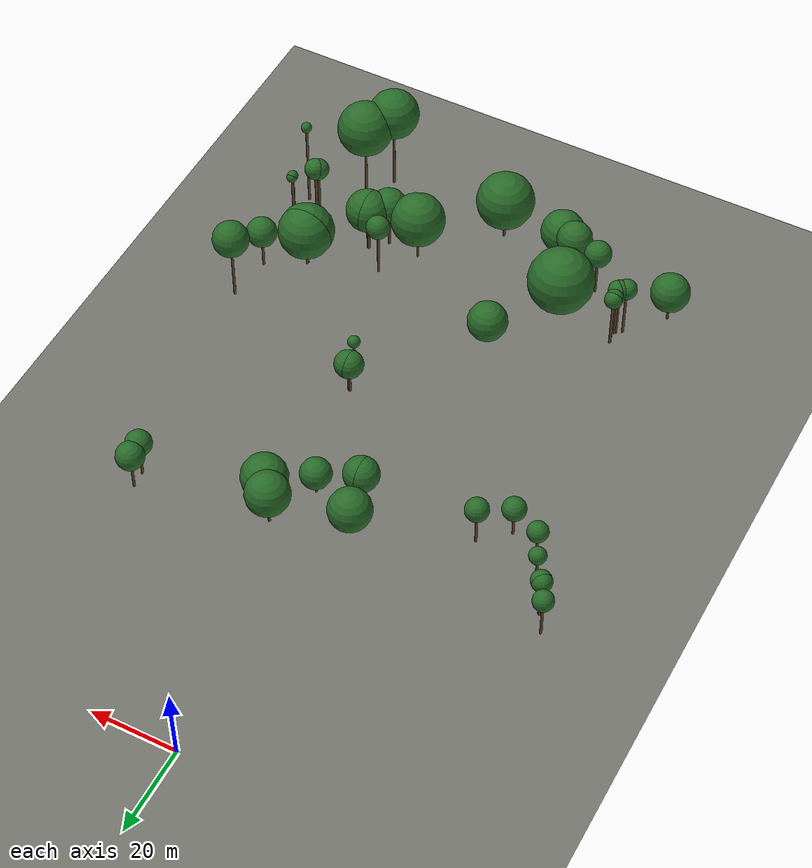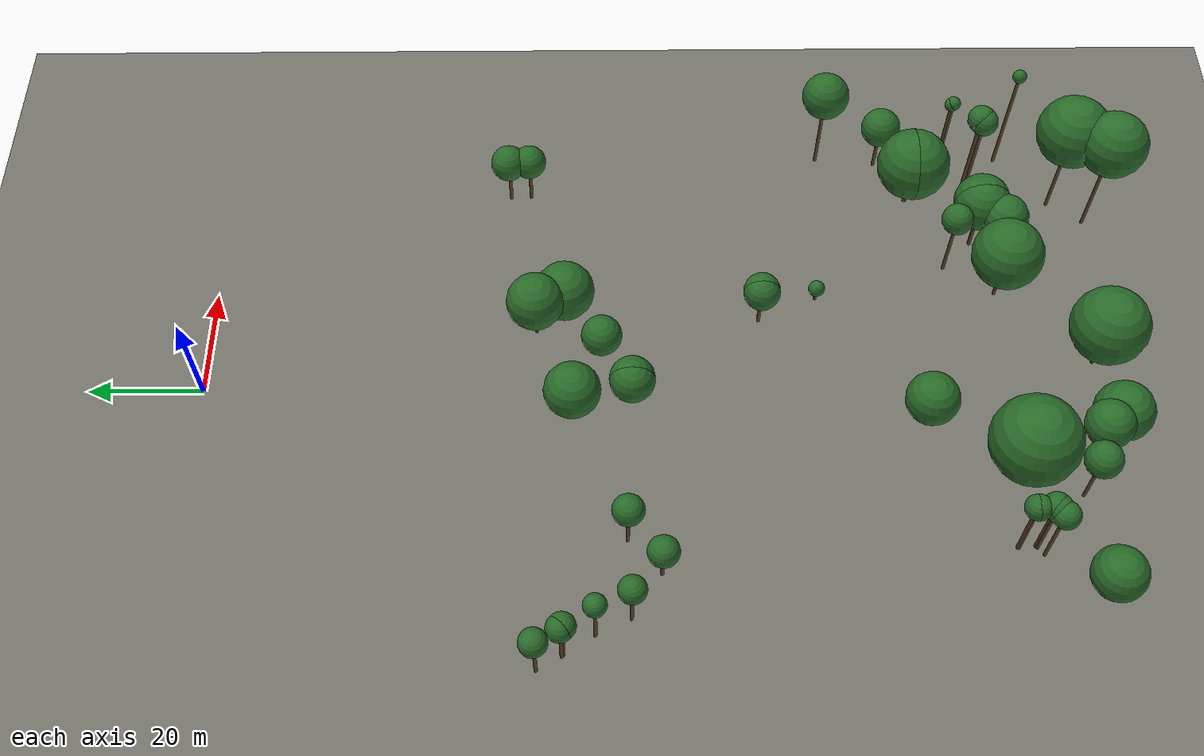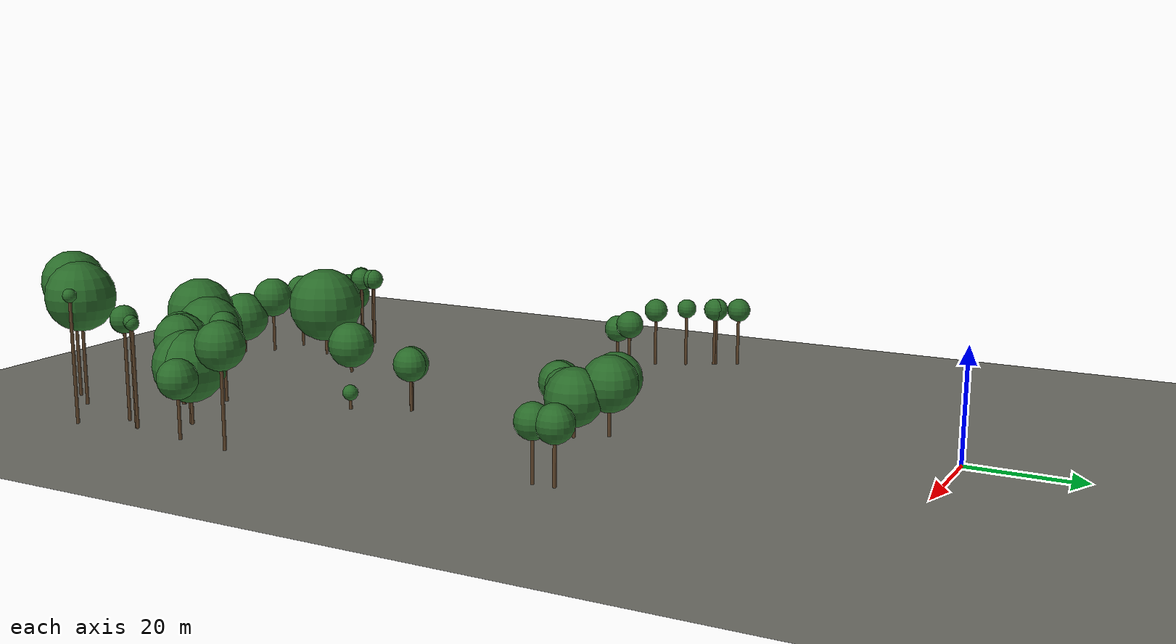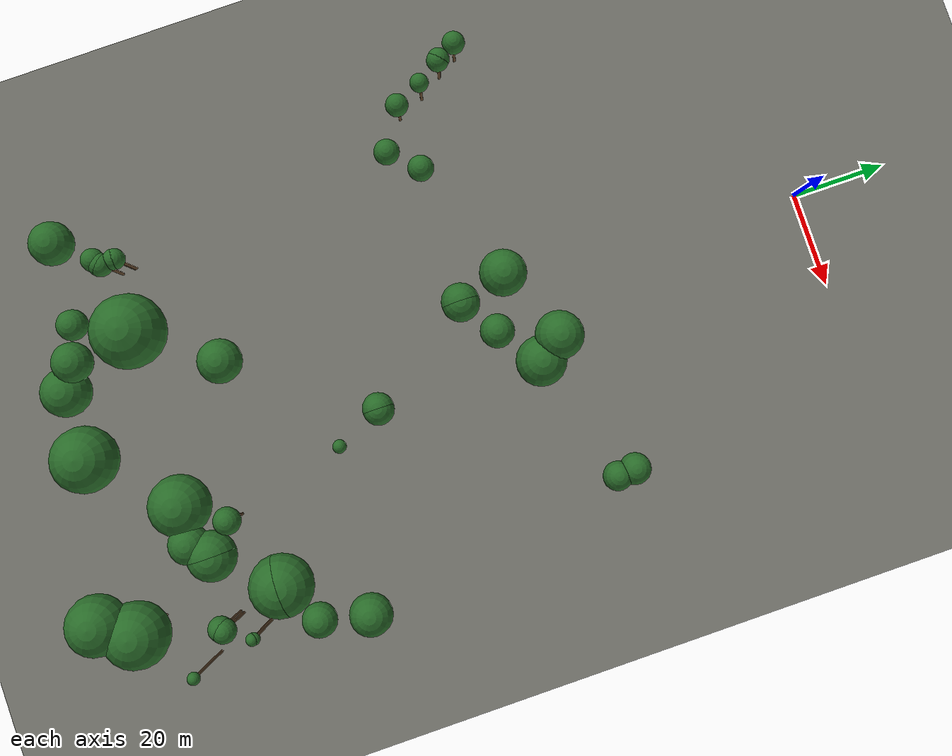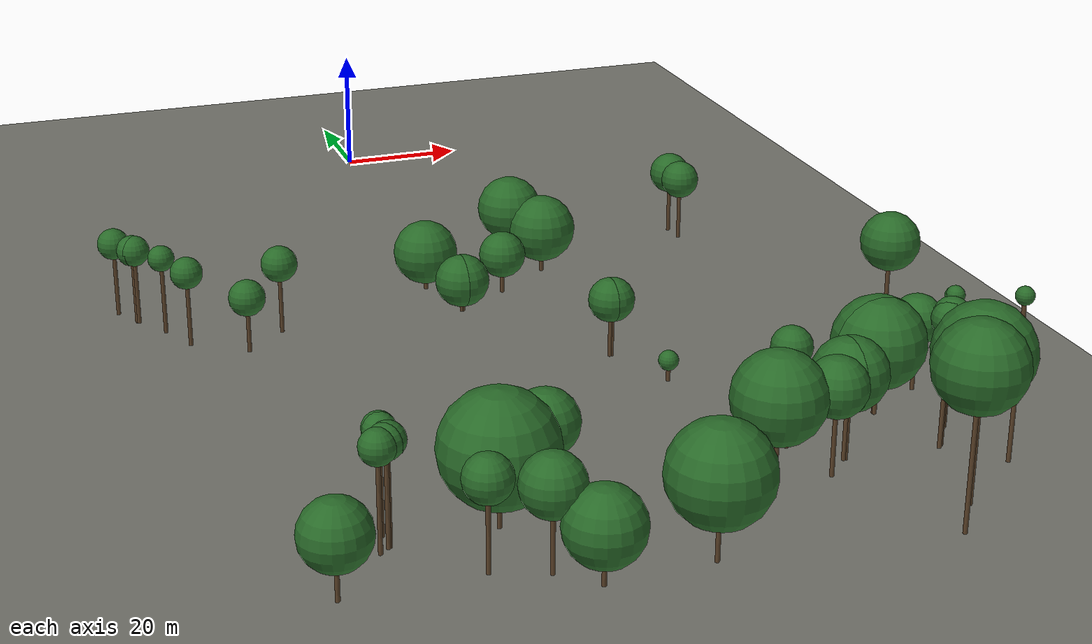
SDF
<sdf version="1.9">
 <world name="uav_arena_bk">
  <model name="ground_plane">
   <static>true</static>
   <link name="link">
    <collision name="collision">
     <geometry><plane><normal>0 0 1</normal><size>1200 1200</size></plane></geometry>
    </collision>
    <visual name="visual">
     <geometry><plane><normal>0 0 1</normal><size>1200 1200</size></plane></geometry>
     <material><ambient>0.35 0.35 0.33 1</ambient><diffuse>0.45 0.45 0.42 1</diffuse></material>
    </visual>
   </link>
  </model>
  <model name="tree_232">
   <static>true</static>
   <pose>42.312 -52.346 0 0 0 0</pose>
   <link name="link">
    <collision name="trunk_collision">
     <pose>0 0 3.500 0 0 0</pose>
     <geometry><cylinder><radius>0.30</radius><length>7.000</length></cylinder></geometry>
    </collision>
    <visual name="trunk_visual">
     <pose>0 0 3.500 0 0 0</pose>
     <geometry><cylinder><radius>0.30</radius><length>7.000</length></cylinder></geometry>
     <material><ambient>0.25 0.18 0.11 1</ambient><diffuse>0.35 0.25 0.15 1</diffuse></material>
    </visual>
    <collision name="canopy_collision">
     <pose>0 0 10.250 0 0 0</pose>
     <geometry><sphere><radius>3.250</radius></sphere></geometry>
    </collision>
    <visual name="canopy_visual">
     <pose>0 0 10.250 0 0 0</pose>
     <geometry><sphere><radius>3.250</radius></sphere></geometry>
     <material><ambient>0.10 0.28 0.10 1</ambient><diffuse>0.16 0.42 0.16 1</diffuse></material>
     <plugin filename="gz-sim-label-system" name="gz::sim::systems::Label"><label>2</label></plugin>
    </visual>
   </link>
  </model>
  <model name="tree_238">
   <static>true</static>
   <pose>42.542 -56.098 0 0 0 0</pose>
   <link name="link">
    <collision name="trunk_collision">
     <pose>0 0 3.600 0 0 0</pose>
     <geometry><cylinder><radius>0.30</radius><length>7.200</length></cylinder></geometry>
    </collision>
    <visual name="trunk_visual">
     <pose>0 0 3.600 0 0 0</pose>
     <geometry><cylinder><radius>0.30</radius><length>7.200</length></cylinder></geometry>
     <material><ambient>0.25 0.18 0.11 1</ambient><diffuse>0.35 0.25 0.15 1</diffuse></material>
    </visual>
    <collision name="canopy_collision">
     <pose>0 0 10.240 0 0 0</pose>
     <geometry><sphere><radius>3.040</radius></sphere></geometry>
    </collision>
    <visual name="canopy_visual">
     <pose>0 0 10.240 0 0 0</pose>
     <geometry><sphere><radius>3.040</radius></sphere></geometry>
     <material><ambient>0.10 0.28 0.10 1</ambient><diffuse>0.16 0.42 0.16 1</diffuse></material>
     <plugin filename="gz-sim-label-system" name="gz::sim::systems::Label"><label>2</label></plugin>
    </visual>
   </link>
  </model>
  <model name="tree_239">
   <static>true</static>
   <pose>12.033 -57.682 0 0 0 0</pose>
   <link name="link">
    <collision name="trunk_collision">
     <pose>0 0 2.180 0 0 0</pose>
     <geometry><cylinder><radius>0.30</radius><length>4.360</length></cylinder></geometry>
    </collision>
    <visual name="trunk_visual">
     <pose>0 0 2.180 0 0 0</pose>
     <geometry><cylinder><radius>0.30</radius><length>4.360</length></cylinder></geometry>
     <material><ambient>0.25 0.18 0.11 1</ambient><diffuse>0.35 0.25 0.15 1</diffuse></material>
    </visual>
    <collision name="canopy_collision">
     <pose>0 0 9.420 0 0 0</pose>
     <geometry><sphere><radius>5.060</radius></sphere></geometry>
    </collision>
    <visual name="canopy_visual">
     <pose>0 0 9.420 0 0 0</pose>
     <geometry><sphere><radius>5.060</radius></sphere></geometry>
     <material><ambient>0.10 0.28 0.10 1</ambient><diffuse>0.16 0.42 0.16 1</diffuse></material>
     <plugin filename="gz-sim-label-system" name="gz::sim::systems::Label"><label>2</label></plugin>
    </visual>
   </link>
  </model>
  <model name="tree_241">
   <static>true</static>
   <pose>-51.222 -58.590 0 0 0 0</pose>
   <link name="link">
    <collision name="trunk_collision">
     <pose>0 0 4.565 0 0 0</pose>
     <geometry><cylinder><radius>0.30</radius><length>9.130</length></cylinder></geometry>
    </collision>
    <visual name="trunk_visual">
     <pose>0 0 4.565 0 0 0</pose>
     <geometry><cylinder><radius>0.30</radius><length>9.130</length></cylinder></geometry>
     <material><ambient>0.25 0.18 0.11 1</ambient><diffuse>0.35 0.25 0.15 1</diffuse></material>
    </visual>
    <collision name="canopy_collision">
     <pose>0 0 11.490 0 0 0</pose>
     <geometry><sphere><radius>2.360</radius></sphere></geometry>
    </collision>
    <visual name="canopy_visual">
     <pose>0 0 11.490 0 0 0</pose>
     <geometry><sphere><radius>2.360</radius></sphere></geometry>
     <material><ambient>0.10 0.28 0.10 1</ambient><diffuse>0.16 0.42 0.16 1</diffuse></material>
     <plugin filename="gz-sim-label-system" name="gz::sim::systems::Label"><label>2</label></plugin>
    </visual>
   </link>
  </model>
  <model name="tree_244">
   <static>true</static>
   <pose>15.756 -62.702 0 0 0 0</pose>
   <link name="link">
    <collision name="trunk_collision">
     <pose>0 0 1.000 0 0 0</pose>
     <geometry><cylinder><radius>0.30</radius><length>2.000</length></cylinder></geometry>
    </collision>
    <visual name="trunk_visual">
     <pose>0 0 1.000 0 0 0</pose>
     <geometry><cylinder><radius>0.30</radius><length>2.000</length></cylinder></geometry>
     <material><ambient>0.25 0.18 0.11 1</ambient><diffuse>0.35 0.25 0.15 1</diffuse></material>
    </visual>
    <collision name="canopy_collision">
     <pose>0 0 7.260 0 0 0</pose>
     <geometry><sphere><radius>5.260</radius></sphere></geometry>
    </collision>
    <visual name="canopy_visual">
     <pose>0 0 7.260 0 0 0</pose>
     <geometry><sphere><radius>5.260</radius></sphere></geometry>
     <material><ambient>0.10 0.28 0.10 1</ambient><diffuse>0.16 0.42 0.16 1</diffuse></material>
     <plugin filename="gz-sim-label-system" name="gz::sim::systems::Label"><label>2</label></plugin>
    </visual>
   </link>
  </model>
  <model name="tree_245">
   <static>true</static>
   <pose>-48.994 -62.602 0 0 0 0</pose>
   <link name="link">
    <collision name="trunk_collision">
     <pose>0 0 4.655 0 0 0</pose>
     <geometry><cylinder><radius>0.30</radius><length>9.310</length></cylinder></geometry>
    </collision>
    <visual name="trunk_visual">
     <pose>0 0 4.655 0 0 0</pose>
     <geometry><cylinder><radius>0.30</radius><length>9.310</length></cylinder></geometry>
     <material><ambient>0.25 0.18 0.11 1</ambient><diffuse>0.35 0.25 0.15 1</diffuse></material>
    </visual>
    <collision name="canopy_collision">
     <pose>0 0 11.610 0 0 0</pose>
     <geometry><sphere><radius>2.300</radius></sphere></geometry>
    </collision>
    <visual name="canopy_visual">
     <pose>0 0 11.610 0 0 0</pose>
     <geometry><sphere><radius>2.300</radius></sphere></geometry>
     <material><ambient>0.10 0.28 0.10 1</ambient><diffuse>0.16 0.42 0.16 1</diffuse></material>
     <plugin filename="gz-sim-label-system" name="gz::sim::systems::Label"><label>2</label></plugin>
    </visual>
   </link>
  </model>
  <model name="tree_246">
   <static>true</static>
   <pose>-48.745 -62.853 0 0 0 0</pose>
   <link name="link">
    <collision name="trunk_collision">
     <pose>0 0 4.660 0 0 0</pose>
     <geometry><cylinder><radius>0.30</radius><length>9.320</length></cylinder></geometry>
    </collision>
    <visual name="trunk_visual">
     <pose>0 0 4.660 0 0 0</pose>
     <geometry><cylinder><radius>0.30</radius><length>9.320</length></cylinder></geometry>
     <material><ambient>0.25 0.18 0.11 1</ambient><diffuse>0.35 0.25 0.15 1</diffuse></material>
    </visual>
    <collision name="canopy_collision">
     <pose>0 0 11.620 0 0 0</pose>
     <geometry><sphere><radius>2.300</radius></sphere></geometry>
    </collision>
    <visual name="canopy_visual">
     <pose>0 0 11.620 0 0 0</pose>
     <geometry><sphere><radius>2.300</radius></sphere></geometry>
     <material><ambient>0.10 0.28 0.10 1</ambient><diffuse>0.16 0.42 0.16 1</diffuse></material>
     <plugin filename="gz-sim-label-system" name="gz::sim::systems::Label"><label>2</label></plugin>
    </visual>
   </link>
  </model>
  <model name="tree_248">
   <static>true</static>
   <pose>-4.002 -64.095 0 0 0 0</pose>
   <link name="link">
    <collision name="trunk_collision">
     <pose>0 0 0.635 0 0 0</pose>
     <geometry><cylinder><radius>0.30</radius><length>1.270</length></cylinder></geometry>
    </collision>
    <visual name="trunk_visual">
     <pose>0 0 0.635 0 0 0</pose>
     <geometry><cylinder><radius>0.30</radius><length>1.270</length></cylinder></geometry>
     <material><ambient>0.25 0.18 0.11 1</ambient><diffuse>0.35 0.25 0.15 1</diffuse></material>
    </visual>
    <collision name="canopy_collision">
     <pose>0 0 6.220 0 0 0</pose>
     <geometry><sphere><radius>4.950</radius></sphere></geometry>
    </collision>
    <visual name="canopy_visual">
     <pose>0 0 6.220 0 0 0</pose>
     <geometry><sphere><radius>4.950</radius></sphere></geometry>
     <material><ambient>0.10 0.28 0.10 1</ambient><diffuse>0.16 0.42 0.16 1</diffuse></material>
     <plugin filename="gz-sim-label-system" name="gz::sim::systems::Label"><label>2</label></plugin>
    </visual>
   </link>
  </model>
  <model name="tree_253">
   <static>true</static>
   <pose>-45.523 -67.871 0 0 0 0</pose>
   <link name="link">
    <collision name="trunk_collision">
     <pose>0 0 4.970 0 0 0</pose>
     <geometry><cylinder><radius>0.30</radius><length>9.940</length></cylinder></geometry>
    </collision>
    <visual name="trunk_visual">
     <pose>0 0 4.970 0 0 0</pose>
     <geometry><cylinder><radius>0.30</radius><length>9.940</length></cylinder></geometry>
     <material><ambient>0.25 0.18 0.11 1</ambient><diffuse>0.35 0.25 0.15 1</diffuse></material>
    </visual>
    <collision name="canopy_collision">
     <pose>0 0 11.890 0 0 0</pose>
     <geometry><sphere><radius>1.950</radius></sphere></geometry>
    </collision>
    <visual name="canopy_visual">
     <pose>0 0 11.890 0 0 0</pose>
     <geometry><sphere><radius>1.950</radius></sphere></geometry>
     <material><ambient>0.10 0.28 0.10 1</ambient><diffuse>0.16 0.42 0.16 1</diffuse></material>
     <plugin filename="gz-sim-label-system" name="gz::sim::systems::Label"><label>2</label></plugin>
    </visual>
   </link>
  </model>
  <model name="tree_256">
   <static>true</static>
   <pose>6.971 -69.155 0 0 0 0</pose>
   <link name="link">
    <collision name="trunk_collision">
     <pose>0 0 1.350 0 0 0</pose>
     <geometry><cylinder><radius>0.30</radius><length>2.700</length></cylinder></geometry>
    </collision>
    <visual name="trunk_visual">
     <pose>0 0 1.350 0 0 0</pose>
     <geometry><cylinder><radius>0.30</radius><length>2.700</length></cylinder></geometry>
     <material><ambient>0.25 0.18 0.11 1</ambient><diffuse>0.35 0.25 0.15 1</diffuse></material>
    </visual>
    <collision name="canopy_collision">
     <pose>0 0 6.280 0 0 0</pose>
     <geometry><sphere><radius>3.580</radius></sphere></geometry>
    </collision>
    <visual name="canopy_visual">
     <pose>0 0 6.280 0 0 0</pose>
     <geometry><sphere><radius>3.580</radius></sphere></geometry>
     <material><ambient>0.10 0.28 0.10 1</ambient><diffuse>0.16 0.42 0.16 1</diffuse></material>
     <plugin filename="gz-sim-label-system" name="gz::sim::systems::Label"><label>2</label></plugin>
    </visual>
   </link>
  </model>
  <model name="tree_260">
   <static>true</static>
   <pose>-29.051 -73.210 0 0 0 0</pose>
   <link name="link">
    <collision name="trunk_collision">
     <pose>0 0 4.105 0 0 0</pose>
     <geometry><cylinder><radius>0.30</radius><length>8.210</length></cylinder></geometry>
    </collision>
    <visual name="trunk_visual">
     <pose>0 0 4.105 0 0 0</pose>
     <geometry><cylinder><radius>0.30</radius><length>8.210</length></cylinder></geometry>
     <material><ambient>0.25 0.18 0.11 1</ambient><diffuse>0.35 0.25 0.15 1</diffuse></material>
    </visual>
    <collision name="canopy_collision">
     <pose>0 0 10.910 0 0 0</pose>
     <geometry><sphere><radius>2.700</radius></sphere></geometry>
    </collision>
    <visual name="canopy_visual">
     <pose>0 0 10.910 0 0 0</pose>
     <geometry><sphere><radius>2.700</radius></sphere></geometry>
     <material><ambient>0.10 0.28 0.10 1</ambient><diffuse>0.16 0.42 0.16 1</diffuse></material>
     <plugin filename="gz-sim-label-system" name="gz::sim::systems::Label"><label>2</label></plugin>
    </visual>
   </link>
  </model>
  <model name="tree_261">
   <static>true</static>
   <pose>-42.804 -73.635 0 0 0 0</pose>
   <link name="link">
    <collision name="trunk_collision">
     <pose>0 0 4.530 0 0 0</pose>
     <geometry><cylinder><radius>0.30</radius><length>9.060</length></cylinder></geometry>
    </collision>
    <visual name="trunk_visual">
     <pose>0 0 4.530 0 0 0</pose>
     <geometry><cylinder><radius>0.30</radius><length>9.060</length></cylinder></geometry>
     <material><ambient>0.25 0.18 0.11 1</ambient><diffuse>0.35 0.25 0.15 1</diffuse></material>
    </visual>
    <collision name="canopy_collision">
     <pose>0 0 11.430 0 0 0</pose>
     <geometry><sphere><radius>2.370</radius></sphere></geometry>
    </collision>
    <visual name="canopy_visual">
     <pose>0 0 11.430 0 0 0</pose>
     <geometry><sphere><radius>2.370</radius></sphere></geometry>
     <material><ambient>0.10 0.28 0.10 1</ambient><diffuse>0.16 0.42 0.16 1</diffuse></material>
     <plugin filename="gz-sim-label-system" name="gz::sim::systems::Label"><label>2</label></plugin>
    </visual>
   </link>
  </model>
  <model name="tree_262">
   <static>true</static>
   <pose>-1.307 -74.360 0 0 0 0</pose>
   <link name="link">
    <collision name="trunk_collision">
     <pose>0 0 0.500 0 0 0</pose>
     <geometry><cylinder><radius>0.30</radius><length>1.000</length></cylinder></geometry>
    </collision>
    <visual name="trunk_visual">
     <pose>0 0 0.500 0 0 0</pose>
     <geometry><cylinder><radius>0.30</radius><length>1.000</length></cylinder></geometry>
     <material><ambient>0.25 0.18 0.11 1</ambient><diffuse>0.35 0.25 0.15 1</diffuse></material>
    </visual>
    <collision name="canopy_collision">
     <pose>0 0 5.000 0 0 0</pose>
     <geometry><sphere><radius>4.000</radius></sphere></geometry>
    </collision>
    <visual name="canopy_visual">
     <pose>0 0 5.000 0 0 0</pose>
     <geometry><sphere><radius>4.000</radius></sphere></geometry>
     <material><ambient>0.10 0.28 0.10 1</ambient><diffuse>0.16 0.42 0.16 1</diffuse></material>
     <plugin filename="gz-sim-label-system" name="gz::sim::systems::Label"><label>2</label></plugin>
    </visual>
   </link>
  </model>
  <model name="tree_263">
   <static>true</static>
   <pose>-1.057 -74.361 0 0 0 0</pose>
   <link name="link">
    <collision name="trunk_collision">
     <pose>0 0 0.500 0 0 0</pose>
     <geometry><cylinder><radius>0.30</radius><length>1.000</length></cylinder></geometry>
    </collision>
    <visual name="trunk_visual">
     <pose>0 0 0.500 0 0 0</pose>
     <geometry><cylinder><radius>0.30</radius><length>1.000</length></cylinder></geometry>
     <material><ambient>0.25 0.18 0.11 1</ambient><diffuse>0.35 0.25 0.15 1</diffuse></material>
    </visual>
    <collision name="canopy_collision">
     <pose>0 0 5.000 0 0 0</pose>
     <geometry><sphere><radius>4.000</radius></sphere></geometry>
    </collision>
    <visual name="canopy_visual">
     <pose>0 0 5.000 0 0 0</pose>
     <geometry><sphere><radius>4.000</radius></sphere></geometry>
     <material><ambient>0.10 0.28 0.10 1</ambient><diffuse>0.16 0.42 0.16 1</diffuse></material>
     <plugin filename="gz-sim-label-system" name="gz::sim::systems::Label"><label>2</label></plugin>
    </visual>
   </link>
  </model>
  <model name="tree_268">
   <static>true</static>
   <pose>-35.081 -78.677 0 0 0 0</pose>
   <link name="link">
    <collision name="trunk_collision">
     <pose>0 0 2.895 0 0 0</pose>
     <geometry><cylinder><radius>0.30</radius><length>5.790</length></cylinder></geometry>
    </collision>
    <visual name="trunk_visual">
     <pose>0 0 2.895 0 0 0</pose>
     <geometry><cylinder><radius>0.30</radius><length>5.790</length></cylinder></geometry>
     <material><ambient>0.25 0.18 0.11 1</ambient><diffuse>0.35 0.25 0.15 1</diffuse></material>
    </visual>
    <collision name="canopy_collision">
     <pose>0 0 8.480 0 0 0</pose>
     <geometry><sphere><radius>2.690</radius></sphere></geometry>
    </collision>
    <visual name="canopy_visual">
     <pose>0 0 8.480 0 0 0</pose>
     <geometry><sphere><radius>2.690</radius></sphere></geometry>
     <material><ambient>0.10 0.28 0.10 1</ambient><diffuse>0.16 0.42 0.16 1</diffuse></material>
     <plugin filename="gz-sim-label-system" name="gz::sim::systems::Label"><label>2</label></plugin>
    </visual>
   </link>
  </model>
  <model name="tree_277">
   <static>true</static>
   <pose>14.069 -97.194 0 0 0 0</pose>
   <link name="link">
    <collision name="trunk_collision">
     <pose>0 0 2.800 0 0 0</pose>
     <geometry><cylinder><radius>0.30</radius><length>5.600</length></cylinder></geometry>
    </collision>
    <visual name="trunk_visual">
     <pose>0 0 2.800 0 0 0</pose>
     <geometry><cylinder><radius>0.30</radius><length>5.600</length></cylinder></geometry>
     <material><ambient>0.25 0.18 0.11 1</ambient><diffuse>0.35 0.25 0.15 1</diffuse></material>
    </visual>
    <collision name="canopy_collision">
     <pose>0 0 8.850 0 0 0</pose>
     <geometry><sphere><radius>3.250</radius></sphere></geometry>
    </collision>
    <visual name="canopy_visual">
     <pose>0 0 8.850 0 0 0</pose>
     <geometry><sphere><radius>3.250</radius></sphere></geometry>
     <material><ambient>0.10 0.28 0.10 1</ambient><diffuse>0.16 0.42 0.16 1</diffuse></material>
     <plugin filename="gz-sim-label-system" name="gz::sim::systems::Label"><label>2</label></plugin>
    </visual>
   </link>
  </model>
  <model name="tree_278">
   <static>true</static>
   <pose>14.319 -97.195 0 0 0 0</pose>
   <link name="link">
    <collision name="trunk_collision">
     <pose>0 0 2.800 0 0 0</pose>
     <geometry><cylinder><radius>0.30</radius><length>5.600</length></cylinder></geometry>
    </collision>
    <visual name="trunk_visual">
     <pose>0 0 2.800 0 0 0</pose>
     <geometry><cylinder><radius>0.30</radius><length>5.600</length></cylinder></geometry>
     <material><ambient>0.25 0.18 0.11 1</ambient><diffuse>0.35 0.25 0.15 1</diffuse></material>
    </visual>
    <collision name="canopy_collision">
     <pose>0 0 8.850 0 0 0</pose>
     <geometry><sphere><radius>3.250</radius></sphere></geometry>
    </collision>
    <visual name="canopy_visual">
     <pose>0 0 8.850 0 0 0</pose>
     <geometry><sphere><radius>3.250</radius></sphere></geometry>
     <material><ambient>0.10 0.28 0.10 1</ambient><diffuse>0.16 0.42 0.16 1</diffuse></material>
     <plugin filename="gz-sim-label-system" name="gz::sim::systems::Label"><label>2</label></plugin>
    </visual>
   </link>
  </model>
  <model name="tree_300">
   <static>true</static>
   <pose>18.762 -107.719 0 0 0 0</pose>
   <link name="link">
    <collision name="trunk_collision">
     <pose>0 0 0.840 0 0 0</pose>
     <geometry><cylinder><radius>0.30</radius><length>1.680</length></cylinder></geometry>
    </collision>
    <visual name="trunk_visual">
     <pose>0 0 0.840 0 0 0</pose>
     <geometry><cylinder><radius>0.30</radius><length>1.680</length></cylinder></geometry>
     <material><ambient>0.25 0.18 0.11 1</ambient><diffuse>0.35 0.25 0.15 1</diffuse></material>
    </visual>
    <collision name="canopy_collision">
     <pose>0 0 3.140 0 0 0</pose>
     <geometry><sphere><radius>1.460</radius></sphere></geometry>
    </collision>
    <visual name="canopy_visual">
     <pose>0 0 3.140 0 0 0</pose>
     <geometry><sphere><radius>1.460</radius></sphere></geometry>
     <material><ambient>0.10 0.28 0.10 1</ambient><diffuse>0.16 0.42 0.16 1</diffuse></material>
     <plugin filename="gz-sim-label-system" name="gz::sim::systems::Label"><label>2</label></plugin>
    </visual>
   </link>
  </model>
  <model name="tree_302">
   <static>true</static>
   <pose>51.248 -110.395 0 0 0 0</pose>
   <link name="link">
    <collision name="trunk_collision">
     <pose>0 0 6.870 0 0 0</pose>
     <geometry><cylinder><radius>0.30</radius><length>13.740</length></cylinder></geometry>
    </collision>
    <visual name="trunk_visual">
     <pose>0 0 6.870 0 0 0</pose>
     <geometry><cylinder><radius>0.30</radius><length>13.740</length></cylinder></geometry>
     <material><ambient>0.25 0.18 0.11 1</ambient><diffuse>0.35 0.25 0.15 1</diffuse></material>
    </visual>
    <collision name="canopy_collision">
     <pose>0 0 17.990 0 0 0</pose>
     <geometry><sphere><radius>4.250</radius></sphere></geometry>
    </collision>
    <visual name="canopy_visual">
     <pose>0 0 17.990 0 0 0</pose>
     <geometry><sphere><radius>4.250</radius></sphere></geometry>
     <material><ambient>0.10 0.28 0.10 1</ambient><diffuse>0.16 0.42 0.16 1</diffuse></material>
     <plugin filename="gz-sim-label-system" name="gz::sim::systems::Label"><label>2</label></plugin>
    </visual>
   </link>
  </model>
  <model name="tree_307">
   <static>true</static>
   <pose>49.938 -121.388 0 0 0 0</pose>
   <link name="link">
    <collision name="trunk_collision">
     <pose>0 0 3.565 0 0 0</pose>
     <geometry><cylinder><radius>0.30</radius><length>7.130</length></cylinder></geometry>
    </collision>
    <visual name="trunk_visual">
     <pose>0 0 3.565 0 0 0</pose>
     <geometry><cylinder><radius>0.30</radius><length>7.130</length></cylinder></geometry>
     <material><ambient>0.25 0.18 0.11 1</ambient><diffuse>0.35 0.25 0.15 1</diffuse></material>
    </visual>
    <collision name="canopy_collision">
     <pose>0 0 10.710 0 0 0</pose>
     <geometry><sphere><radius>3.580</radius></sphere></geometry>
    </collision>
    <visual name="canopy_visual">
     <pose>0 0 10.710 0 0 0</pose>
     <geometry><sphere><radius>3.580</radius></sphere></geometry>
     <material><ambient>0.10 0.28 0.10 1</ambient><diffuse>0.16 0.42 0.16 1</diffuse></material>
     <plugin filename="gz-sim-label-system" name="gz::sim::systems::Label"><label>2</label></plugin>
    </visual>
   </link>
  </model>
  <model name="tree_316">
   <static>true</static>
   <pose>-5.832 -125.086 0 0 0 0</pose>
   <link name="link">
    <collision name="trunk_collision">
     <pose>0 0 0.500 0 0 0</pose>
     <geometry><cylinder><radius>0.30</radius><length>1.000</length></cylinder></geometry>
    </collision>
    <visual name="trunk_visual">
     <pose>0 0 0.500 0 0 0</pose>
     <geometry><cylinder><radius>0.30</radius><length>1.000</length></cylinder></geometry>
     <material><ambient>0.25 0.18 0.11 1</ambient><diffuse>0.35 0.25 0.15 1</diffuse></material>
    </visual>
    <collision name="canopy_collision">
     <pose>0 0 5.670 0 0 0</pose>
     <geometry><sphere><radius>4.670</radius></sphere></geometry>
    </collision>
    <visual name="canopy_visual">
     <pose>0 0 5.670 0 0 0</pose>
     <geometry><sphere><radius>4.670</radius></sphere></geometry>
     <material><ambient>0.10 0.28 0.10 1</ambient><diffuse>0.16 0.42 0.16 1</diffuse></material>
     <plugin filename="gz-sim-label-system" name="gz::sim::systems::Label"><label>2</label></plugin>
    </visual>
   </link>
  </model>
  <model name="tree_317">
   <static>true</static>
   <pose>41.161 -126.341 0 0 0 0</pose>
   <link name="link">
    <collision name="trunk_collision">
     <pose>0 0 2.075 0 0 0</pose>
     <geometry><cylinder><radius>0.30</radius><length>4.150</length></cylinder></geometry>
    </collision>
    <visual name="trunk_visual">
     <pose>0 0 2.075 0 0 0</pose>
     <geometry><cylinder><radius>0.30</radius><length>4.150</length></cylinder></geometry>
     <material><ambient>0.25 0.18 0.11 1</ambient><diffuse>0.35 0.25 0.15 1</diffuse></material>
    </visual>
    <collision name="canopy_collision">
     <pose>0 0 10.640 0 0 0</pose>
     <geometry><sphere><radius>6.490</radius></sphere></geometry>
    </collision>
    <visual name="canopy_visual">
     <pose>0 0 10.640 0 0 0</pose>
     <geometry><sphere><radius>6.490</radius></sphere></geometry>
     <material><ambient>0.10 0.28 0.10 1</ambient><diffuse>0.16 0.42 0.16 1</diffuse></material>
     <plugin filename="gz-sim-label-system" name="gz::sim::systems::Label"><label>2</label></plugin>
    </visual>
   </link>
  </model>
  <model name="tree_319">
   <static>true</static>
   <pose>41.160 -126.591 0 0 0 0</pose>
   <link name="link">
    <collision name="trunk_collision">
     <pose>0 0 2.075 0 0 0</pose>
     <geometry><cylinder><radius>0.30</radius><length>4.150</length></cylinder></geometry>
    </collision>
    <visual name="trunk_visual">
     <pose>0 0 2.075 0 0 0</pose>
     <geometry><cylinder><radius>0.30</radius><length>4.150</length></cylinder></geometry>
     <material><ambient>0.25 0.18 0.11 1</ambient><diffuse>0.35 0.25 0.15 1</diffuse></material>
    </visual>
    <collision name="canopy_collision">
     <pose>0 0 10.640 0 0 0</pose>
     <geometry><sphere><radius>6.490</radius></sphere></geometry>
    </collision>
    <visual name="canopy_visual">
     <pose>0 0 10.640 0 0 0</pose>
     <geometry><sphere><radius>6.490</radius></sphere></geometry>
     <material><ambient>0.10 0.28 0.10 1</ambient><diffuse>0.16 0.42 0.16 1</diffuse></material>
     <plugin filename="gz-sim-label-system" name="gz::sim::systems::Label"><label>2</label></plugin>
    </visual>
   </link>
  </model>
  <model name="tree_326">
   <static>true</static>
   <pose>25.382 -131.755 0 0 0 0</pose>
   <link name="link">
    <collision name="trunk_collision">
     <pose>0 0 5.870 0 0 0</pose>
     <geometry><cylinder><radius>0.30</radius><length>11.740</length></cylinder></geometry>
    </collision>
    <visual name="trunk_visual">
     <pose>0 0 5.870 0 0 0</pose>
     <geometry><cylinder><radius>0.30</radius><length>11.740</length></cylinder></geometry>
     <material><ambient>0.25 0.18 0.11 1</ambient><diffuse>0.35 0.25 0.15 1</diffuse></material>
    </visual>
    <collision name="canopy_collision">
     <pose>0 0 14.540 0 0 0</pose>
     <geometry><sphere><radius>2.800</radius></sphere></geometry>
    </collision>
    <visual name="canopy_visual">
     <pose>0 0 14.540 0 0 0</pose>
     <geometry><sphere><radius>2.800</radius></sphere></geometry>
     <material><ambient>0.10 0.28 0.10 1</ambient><diffuse>0.16 0.42 0.16 1</diffuse></material>
     <plugin filename="gz-sim-label-system" name="gz::sim::systems::Label"><label>2</label></plugin>
    </visual>
   </link>
  </model>
  <model name="tree_327">
   <static>true</static>
   <pose>48.126 -132.878 0 0 0 0</pose>
   <link name="link">
    <collision name="trunk_collision">
     <pose>0 0 8.850 0 0 0</pose>
     <geometry><cylinder><radius>0.30</radius><length>17.700</length></cylinder></geometry>
    </collision>
    <visual name="trunk_visual">
     <pose>0 0 8.850 0 0 0</pose>
     <geometry><cylinder><radius>0.30</radius><length>17.700</length></cylinder></geometry>
     <material><ambient>0.25 0.18 0.11 1</ambient><diffuse>0.35 0.25 0.15 1</diffuse></material>
    </visual>
    <collision name="canopy_collision">
     <pose>0 0 18.970 0 0 0</pose>
     <geometry><sphere><radius>1.270</radius></sphere></geometry>
    </collision>
    <visual name="canopy_visual">
     <pose>0 0 18.970 0 0 0</pose>
     <geometry><sphere><radius>1.270</radius></sphere></geometry>
     <material><ambient>0.10 0.28 0.10 1</ambient><diffuse>0.16 0.42 0.16 1</diffuse></material>
     <plugin filename="gz-sim-label-system" name="gz::sim::systems::Label"><label>2</label></plugin>
    </visual>
   </link>
  </model>
  <model name="tree_328">
   <static>true</static>
   <pose>48.124 -133.128 0 0 0 0</pose>
   <link name="link">
    <collision name="trunk_collision">
     <pose>0 0 8.955 0 0 0</pose>
     <geometry><cylinder><radius>0.30</radius><length>17.910</length></cylinder></geometry>
    </collision>
    <visual name="trunk_visual">
     <pose>0 0 8.955 0 0 0</pose>
     <geometry><cylinder><radius>0.30</radius><length>17.910</length></cylinder></geometry>
     <material><ambient>0.25 0.18 0.11 1</ambient><diffuse>0.35 0.25 0.15 1</diffuse></material>
    </visual>
    <collision name="canopy_collision">
     <pose>0 0 19.180 0 0 0</pose>
     <geometry><sphere><radius>1.270</radius></sphere></geometry>
    </collision>
    <visual name="canopy_visual">
     <pose>0 0 19.180 0 0 0</pose>
     <geometry><sphere><radius>1.270</radius></sphere></geometry>
     <material><ambient>0.10 0.28 0.10 1</ambient><diffuse>0.16 0.42 0.16 1</diffuse></material>
     <plugin filename="gz-sim-label-system" name="gz::sim::systems::Label"><label>2</label></plugin>
    </visual>
   </link>
  </model>
  <model name="tree_330">
   <static>true</static>
   <pose>-30.895 -136.700 0 0 0 0</pose>
   <link name="link">
    <collision name="trunk_collision">
     <pose>0 0 6.135 0 0 0</pose>
     <geometry><cylinder><radius>0.30</radius><length>12.270</length></cylinder></geometry>
    </collision>
    <visual name="trunk_visual">
     <pose>0 0 6.135 0 0 0</pose>
     <geometry><cylinder><radius>0.30</radius><length>12.270</length></cylinder></geometry>
     <material><ambient>0.25 0.18 0.11 1</ambient><diffuse>0.35 0.25 0.15 1</diffuse></material>
    </visual>
    <collision name="canopy_collision">
     <pose>0 0 14.410 0 0 0</pose>
     <geometry><sphere><radius>2.140</radius></sphere></geometry>
    </collision>
    <visual name="canopy_visual">
     <pose>0 0 14.410 0 0 0</pose>
     <geometry><sphere><radius>2.140</radius></sphere></geometry>
     <material><ambient>0.10 0.28 0.10 1</ambient><diffuse>0.16 0.42 0.16 1</diffuse></material>
     <plugin filename="gz-sim-label-system" name="gz::sim::systems::Label"><label>2</label></plugin>
    </visual>
   </link>
  </model>
  <model name="tree_331">
   <static>true</static>
   <pose>-30.897 -136.950 0 0 0 0</pose>
   <link name="link">
    <collision name="trunk_collision">
     <pose>0 0 6.145 0 0 0</pose>
     <geometry><cylinder><radius>0.30</radius><length>12.290</length></cylinder></geometry>
    </collision>
    <visual name="trunk_visual">
     <pose>0 0 6.145 0 0 0</pose>
     <geometry><cylinder><radius>0.30</radius><length>12.290</length></cylinder></geometry>
     <material><ambient>0.25 0.18 0.11 1</ambient><diffuse>0.35 0.25 0.15 1</diffuse></material>
    </visual>
    <collision name="canopy_collision">
     <pose>0 0 14.430 0 0 0</pose>
     <geometry><sphere><radius>2.140</radius></sphere></geometry>
    </collision>
    <visual name="canopy_visual">
     <pose>0 0 14.430 0 0 0</pose>
     <geometry><sphere><radius>2.140</radius></sphere></geometry>
     <material><ambient>0.10 0.28 0.10 1</ambient><diffuse>0.16 0.42 0.16 1</diffuse></material>
     <plugin filename="gz-sim-label-system" name="gz::sim::systems::Label"><label>2</label></plugin>
    </visual>
   </link>
  </model>
  <model name="tree_332">
   <static>true</static>
   <pose>30.852 -137.285 0 0 0 0</pose>
   <link name="link">
    <collision name="trunk_collision">
     <pose>0 0 3.630 0 0 0</pose>
     <geometry><cylinder><radius>0.30</radius><length>7.260</length></cylinder></geometry>
    </collision>
    <visual name="trunk_visual">
     <pose>0 0 3.630 0 0 0</pose>
     <geometry><cylinder><radius>0.30</radius><length>7.260</length></cylinder></geometry>
     <material><ambient>0.25 0.18 0.11 1</ambient><diffuse>0.35 0.25 0.15 1</diffuse></material>
    </visual>
    <collision name="canopy_collision">
     <pose>0 0 12.280 0 0 0</pose>
     <geometry><sphere><radius>5.020</radius></sphere></geometry>
    </collision>
    <visual name="canopy_visual">
     <pose>0 0 12.280 0 0 0</pose>
     <geometry><sphere><radius>5.020</radius></sphere></geometry>
     <material><ambient>0.10 0.28 0.10 1</ambient><diffuse>0.16 0.42 0.16 1</diffuse></material>
     <plugin filename="gz-sim-label-system" name="gz::sim::systems::Label"><label>2</label></plugin>
    </visual>
   </link>
  </model>
  <model name="tree_333">
   <static>true</static>
   <pose>31.102 -137.286 0 0 0 0</pose>
   <link name="link">
    <collision name="trunk_collision">
     <pose>0 0 3.630 0 0 0</pose>
     <geometry><cylinder><radius>0.30</radius><length>7.260</length></cylinder></geometry>
    </collision>
    <visual name="trunk_visual">
     <pose>0 0 3.630 0 0 0</pose>
     <geometry><cylinder><radius>0.30</radius><length>7.260</length></cylinder></geometry>
     <material><ambient>0.25 0.18 0.11 1</ambient><diffuse>0.35 0.25 0.15 1</diffuse></material>
    </visual>
    <collision name="canopy_collision">
     <pose>0 0 12.280 0 0 0</pose>
     <geometry><sphere><radius>5.020</radius></sphere></geometry>
    </collision>
    <visual name="canopy_visual">
     <pose>0 0 12.280 0 0 0</pose>
     <geometry><sphere><radius>5.020</radius></sphere></geometry>
     <material><ambient>0.10 0.28 0.10 1</ambient><diffuse>0.16 0.42 0.16 1</diffuse></material>
     <plugin filename="gz-sim-label-system" name="gz::sim::systems::Label"><label>2</label></plugin>
    </visual>
   </link>
  </model>
  <model name="tree_335">
   <static>true</static>
   <pose>44.849 -137.861 0 0 0 0</pose>
   <link name="link">
    <collision name="trunk_collision">
     <pose>0 0 8.085 0 0 0</pose>
     <geometry><cylinder><radius>0.30</radius><length>16.170</length></cylinder></geometry>
    </collision>
    <visual name="trunk_visual">
     <pose>0 0 8.085 0 0 0</pose>
     <geometry><cylinder><radius>0.30</radius><length>16.170</length></cylinder></geometry>
     <material><ambient>0.25 0.18 0.11 1</ambient><diffuse>0.35 0.25 0.15 1</diffuse></material>
    </visual>
    <collision name="canopy_collision">
     <pose>0 0 18.670 0 0 0</pose>
     <geometry><sphere><radius>2.500</radius></sphere></geometry>
    </collision>
    <visual name="canopy_visual">
     <pose>0 0 18.670 0 0 0</pose>
     <geometry><sphere><radius>2.500</radius></sphere></geometry>
     <material><ambient>0.10 0.28 0.10 1</ambient><diffuse>0.16 0.42 0.16 1</diffuse></material>
     <plugin filename="gz-sim-label-system" name="gz::sim::systems::Label"><label>2</label></plugin>
    </visual>
   </link>
  </model>
  <model name="tree_336">
   <static>true</static>
   <pose>44.346 -138.358 0 0 0 0</pose>
   <link name="link">
    <collision name="trunk_collision">
     <pose>0 0 7.960 0 0 0</pose>
     <geometry><cylinder><radius>0.30</radius><length>15.920</length></cylinder></geometry>
    </collision>
    <visual name="trunk_visual">
     <pose>0 0 7.960 0 0 0</pose>
     <geometry><cylinder><radius>0.30</radius><length>15.920</length></cylinder></geometry>
     <material><ambient>0.25 0.18 0.11 1</ambient><diffuse>0.35 0.25 0.15 1</diffuse></material>
    </visual>
    <collision name="canopy_collision">
     <pose>0 0 18.420 0 0 0</pose>
     <geometry><sphere><radius>2.500</radius></sphere></geometry>
    </collision>
    <visual name="canopy_visual">
     <pose>0 0 18.420 0 0 0</pose>
     <geometry><sphere><radius>2.500</radius></sphere></geometry>
     <material><ambient>0.10 0.28 0.10 1</ambient><diffuse>0.16 0.42 0.16 1</diffuse></material>
     <plugin filename="gz-sim-label-system" name="gz::sim::systems::Label"><label>2</label></plugin>
    </visual>
   </link>
  </model>
  <model name="tree_337">
   <static>true</static>
   <pose>-16.910 -139.526 0 0 0 0</pose>
   <link name="link">
    <collision name="trunk_collision">
     <pose>0 0 1.550 0 0 0</pose>
     <geometry><cylinder><radius>0.30</radius><length>3.100</length></cylinder></geometry>
    </collision>
    <visual name="trunk_visual">
     <pose>0 0 1.550 0 0 0</pose>
     <geometry><cylinder><radius>0.30</radius><length>3.100</length></cylinder></geometry>
     <material><ambient>0.25 0.18 0.11 1</ambient><diffuse>0.35 0.25 0.15 1</diffuse></material>
    </visual>
    <collision name="canopy_collision">
     <pose>0 0 10.820 0 0 0</pose>
     <geometry><sphere><radius>7.720</radius></sphere></geometry>
    </collision>
    <visual name="canopy_visual">
     <pose>0 0 10.820 0 0 0</pose>
     <geometry><sphere><radius>7.720</radius></sphere></geometry>
     <material><ambient>0.10 0.28 0.10 1</ambient><diffuse>0.16 0.42 0.16 1</diffuse></material>
     <plugin filename="gz-sim-label-system" name="gz::sim::systems::Label"><label>2</label></plugin>
    </visual>
   </link>
  </model>
  <model name="tree_338">
   <static>true</static>
   <pose>-30.661 -139.702 0 0 0 0</pose>
   <link name="link">
    <collision name="trunk_collision">
     <pose>0 0 5.960 0 0 0</pose>
     <geometry><cylinder><radius>0.30</radius><length>11.920</length></cylinder></geometry>
    </collision>
    <visual name="trunk_visual">
     <pose>0 0 5.960 0 0 0</pose>
     <geometry><cylinder><radius>0.30</radius><length>11.920</length></cylinder></geometry>
     <material><ambient>0.25 0.18 0.11 1</ambient><diffuse>0.35 0.25 0.15 1</diffuse></material>
    </visual>
    <collision name="canopy_collision">
     <pose>0 0 14.280 0 0 0</pose>
     <geometry><sphere><radius>2.360</radius></sphere></geometry>
    </collision>
    <visual name="canopy_visual">
     <pose>0 0 14.280 0 0 0</pose>
     <geometry><sphere><radius>2.360</radius></sphere></geometry>
     <material><ambient>0.10 0.28 0.10 1</ambient><diffuse>0.16 0.42 0.16 1</diffuse></material>
     <plugin filename="gz-sim-label-system" name="gz::sim::systems::Label"><label>2</label></plugin>
    </visual>
   </link>
  </model>
  <model name="tree_339">
   <static>true</static>
   <pose>-30.913 -139.950 0 0 0 0</pose>
   <link name="link">
    <collision name="trunk_collision">
     <pose>0 0 5.955 0 0 0</pose>
     <geometry><cylinder><radius>0.30</radius><length>11.910</length></cylinder></geometry>
    </collision>
    <visual name="trunk_visual">
     <pose>0 0 5.955 0 0 0</pose>
     <geometry><cylinder><radius>0.30</radius><length>11.910</length></cylinder></geometry>
     <material><ambient>0.25 0.18 0.11 1</ambient><diffuse>0.35 0.25 0.15 1</diffuse></material>
    </visual>
    <collision name="canopy_collision">
     <pose>0 0 14.270 0 0 0</pose>
     <geometry><sphere><radius>2.360</radius></sphere></geometry>
    </collision>
    <visual name="canopy_visual">
     <pose>0 0 14.270 0 0 0</pose>
     <geometry><sphere><radius>2.360</radius></sphere></geometry>
     <material><ambient>0.10 0.28 0.10 1</ambient><diffuse>0.16 0.42 0.16 1</diffuse></material>
     <plugin filename="gz-sim-label-system" name="gz::sim::systems::Label"><label>2</label></plugin>
    </visual>
   </link>
  </model>
  <model name="tree_340">
   <static>true</static>
   <pose>19.586 -140.224 0 0 0 0</pose>
   <link name="link">
    <collision name="trunk_collision">
     <pose>0 0 2.885 0 0 0</pose>
     <geometry><cylinder><radius>0.30</radius><length>5.770</length></cylinder></geometry>
    </collision>
    <visual name="trunk_visual">
     <pose>0 0 2.885 0 0 0</pose>
     <geometry><cylinder><radius>0.30</radius><length>5.770</length></cylinder></geometry>
     <material><ambient>0.25 0.18 0.11 1</ambient><diffuse>0.35 0.25 0.15 1</diffuse></material>
    </visual>
    <collision name="canopy_collision">
     <pose>0 0 12.080 0 0 0</pose>
     <geometry><sphere><radius>6.310</radius></sphere></geometry>
    </collision>
    <visual name="canopy_visual">
     <pose>0 0 12.080 0 0 0</pose>
     <geometry><sphere><radius>6.310</radius></sphere></geometry>
     <material><ambient>0.10 0.28 0.10 1</ambient><diffuse>0.16 0.42 0.16 1</diffuse></material>
     <plugin filename="gz-sim-label-system" name="gz::sim::systems::Label"><label>2</label></plugin>
    </visual>
   </link>
  </model>
  <model name="tree_341">
   <static>true</static>
   <pose>27.333 -140.766 0 0 0 0</pose>
   <link name="link">
    <collision name="trunk_collision">
     <pose>0 0 4.215 0 0 0</pose>
     <geometry><cylinder><radius>0.30</radius><length>8.430</length></cylinder></geometry>
    </collision>
    <visual name="trunk_visual">
     <pose>0 0 4.215 0 0 0</pose>
     <geometry><cylinder><radius>0.30</radius><length>8.430</length></cylinder></geometry>
     <material><ambient>0.25 0.18 0.11 1</ambient><diffuse>0.35 0.25 0.15 1</diffuse></material>
    </visual>
    <collision name="canopy_collision">
     <pose>0 0 12.570 0 0 0</pose>
     <geometry><sphere><radius>4.140</radius></sphere></geometry>
    </collision>
    <visual name="canopy_visual">
     <pose>0 0 12.570 0 0 0</pose>
     <geometry><sphere><radius>4.140</radius></sphere></geometry>
     <material><ambient>0.10 0.28 0.10 1</ambient><diffuse>0.16 0.42 0.16 1</diffuse></material>
     <plugin filename="gz-sim-label-system" name="gz::sim::systems::Label"><label>2</label></plugin>
    </visual>
   </link>
  </model>
  <model name="tree_342">
   <static>true</static>
   <pose>-32.168 -140.943 0 0 0 0</pose>
   <link name="link">
    <collision name="trunk_collision">
     <pose>0 0 5.940 0 0 0</pose>
     <geometry><cylinder><radius>0.30</radius><length>11.880</length></cylinder></geometry>
    </collision>
    <visual name="trunk_visual">
     <pose>0 0 5.940 0 0 0</pose>
     <geometry><cylinder><radius>0.30</radius><length>11.880</length></cylinder></geometry>
     <material><ambient>0.25 0.18 0.11 1</ambient><diffuse>0.35 0.25 0.15 1</diffuse></material>
    </visual>
    <collision name="canopy_collision">
     <pose>0 0 14.240 0 0 0</pose>
     <geometry><sphere><radius>2.360</radius></sphere></geometry>
    </collision>
    <visual name="canopy_visual">
     <pose>0 0 14.240 0 0 0</pose>
     <geometry><sphere><radius>2.360</radius></sphere></geometry>
     <material><ambient>0.10 0.28 0.10 1</ambient><diffuse>0.16 0.42 0.16 1</diffuse></material>
     <plugin filename="gz-sim-label-system" name="gz::sim::systems::Label"><label>2</label></plugin>
    </visual>
   </link>
  </model>
  <model name="tree_343">
   <static>true</static>
   <pose>50.812 -144.643 0 0 0 0</pose>
   <link name="link">
    <collision name="trunk_collision">
     <pose>0 0 11.000 0 0 0</pose>
     <geometry><cylinder><radius>0.30</radius><length>22.000</length></cylinder></geometry>
    </collision>
    <visual name="trunk_visual">
     <pose>0 0 11.000 0 0 0</pose>
     <geometry><cylinder><radius>0.30</radius><length>22.000</length></cylinder></geometry>
     <material><ambient>0.25 0.18 0.11 1</ambient><diffuse>0.35 0.25 0.15 1</diffuse></material>
    </visual>
    <collision name="canopy_collision">
     <pose>0 0 23.250 0 0 0</pose>
     <geometry><sphere><radius>1.250</radius></sphere></geometry>
    </collision>
    <visual name="canopy_visual">
     <pose>0 0 23.250 0 0 0</pose>
     <geometry><sphere><radius>1.250</radius></sphere></geometry>
     <material><ambient>0.10 0.28 0.10 1</ambient><diffuse>0.16 0.42 0.16 1</diffuse></material>
     <plugin filename="gz-sim-label-system" name="gz::sim::systems::Label"><label>2</label></plugin>
    </visual>
   </link>
  </model>
  <model name="tree_356">
   <static>true</static>
   <pose>-21.463 -149.251 0 0 0 0</pose>
   <link name="link">
    <collision name="trunk_collision">
     <pose>0 0 4.660 0 0 0</pose>
     <geometry><cylinder><radius>0.30</radius><length>9.320</length></cylinder></geometry>
    </collision>
    <visual name="trunk_visual">
     <pose>0 0 4.660 0 0 0</pose>
     <geometry><cylinder><radius>0.30</radius><length>9.320</length></cylinder></geometry>
     <material><ambient>0.25 0.18 0.11 1</ambient><diffuse>0.35 0.25 0.15 1</diffuse></material>
    </visual>
    <collision name="canopy_collision">
     <pose>0 0 12.480 0 0 0</pose>
     <geometry><sphere><radius>3.160</radius></sphere></geometry>
    </collision>
    <visual name="canopy_visual">
     <pose>0 0 12.480 0 0 0</pose>
     <geometry><sphere><radius>3.160</radius></sphere></geometry>
     <material><ambient>0.10 0.28 0.10 1</ambient><diffuse>0.16 0.42 0.16 1</diffuse></material>
     <plugin filename="gz-sim-label-system" name="gz::sim::systems::Label"><label>2</label></plugin>
    </visual>
   </link>
  </model>
  <model name="tree_357">
   <static>true</static>
   <pose>-39.464 -149.404 0 0 0 0</pose>
   <link name="link">
    <collision name="trunk_collision">
     <pose>0 0 2.045 0 0 0</pose>
     <geometry><cylinder><radius>0.30</radius><length>4.090</length></cylinder></geometry>
    </collision>
    <visual name="trunk_visual">
     <pose>0 0 2.045 0 0 0</pose>
     <geometry><cylinder><radius>0.30</radius><length>4.090</length></cylinder></geometry>
     <material><ambient>0.25 0.18 0.11 1</ambient><diffuse>0.35 0.25 0.15 1</diffuse></material>
    </visual>
    <collision name="canopy_collision">
     <pose>0 0 8.650 0 0 0</pose>
     <geometry><sphere><radius>4.560</radius></sphere></geometry>
    </collision>
    <visual name="canopy_visual">
     <pose>0 0 8.650 0 0 0</pose>
     <geometry><sphere><radius>4.560</radius></sphere></geometry>
     <material><ambient>0.10 0.28 0.10 1</ambient><diffuse>0.16 0.42 0.16 1</diffuse></material>
     <plugin filename="gz-sim-label-system" name="gz::sim::systems::Label"><label>2</label></plugin>
    </visual>
   </link>
  </model>
  <model name="tree_358">
   <static>true</static>
   <pose>-14.477 -151.789 0 0 0 0</pose>
   <link name="link">
    <collision name="trunk_collision">
     <pose>0 0 3.795 0 0 0</pose>
     <geometry><cylinder><radius>0.30</radius><length>7.590</length></cylinder></geometry>
    </collision>
    <visual name="trunk_visual">
     <pose>0 0 3.795 0 0 0</pose>
     <geometry><cylinder><radius>0.30</radius><length>7.590</length></cylinder></geometry>
     <material><ambient>0.25 0.18 0.11 1</ambient><diffuse>0.35 0.25 0.15 1</diffuse></material>
    </visual>
    <collision name="canopy_collision">
     <pose>0 0 11.730 0 0 0</pose>
     <geometry><sphere><radius>4.140</radius></sphere></geometry>
    </collision>
    <visual name="canopy_visual">
     <pose>0 0 11.730 0 0 0</pose>
     <geometry><sphere><radius>4.140</radius></sphere></geometry>
     <material><ambient>0.10 0.28 0.10 1</ambient><diffuse>0.16 0.42 0.16 1</diffuse></material>
     <plugin filename="gz-sim-label-system" name="gz::sim::systems::Label"><label>2</label></plugin>
    </visual>
   </link>
  </model>
  <model name="tree_362">
   <static>true</static>
   <pose>40.016 -153.085 0 0 0 0</pose>
   <link name="link">
    <collision name="trunk_collision">
     <pose>0 0 7.080 0 0 0</pose>
     <geometry><cylinder><radius>0.30</radius><length>14.160</length></cylinder></geometry>
    </collision>
    <visual name="trunk_visual">
     <pose>0 0 7.080 0 0 0</pose>
     <geometry><cylinder><radius>0.30</radius><length>14.160</length></cylinder></geometry>
     <material><ambient>0.25 0.18 0.11 1</ambient><diffuse>0.35 0.25 0.15 1</diffuse></material>
    </visual>
    <collision name="canopy_collision">
     <pose>0 0 20.660 0 0 0</pose>
     <geometry><sphere><radius>6.500</radius></sphere></geometry>
    </collision>
    <visual name="canopy_visual">
     <pose>0 0 20.660 0 0 0</pose>
     <geometry><sphere><radius>6.500</radius></sphere></geometry>
     <material><ambient>0.10 0.28 0.10 1</ambient><diffuse>0.16 0.42 0.16 1</diffuse></material>
     <plugin filename="gz-sim-label-system" name="gz::sim::systems::Label"><label>2</label></plugin>
    </visual>
   </link>
  </model>
  <model name="tree_364">
   <static>true</static>
   <pose>4.754 -155.394 0 0 0 0</pose>
   <link name="link">
    <collision name="trunk_collision">
     <pose>0 0 2.415 0 0 0</pose>
     <geometry><cylinder><radius>0.30</radius><length>4.830</length></cylinder></geometry>
    </collision>
    <visual name="trunk_visual">
     <pose>0 0 2.415 0 0 0</pose>
     <geometry><cylinder><radius>0.30</radius><length>4.830</length></cylinder></geometry>
     <material><ambient>0.25 0.18 0.11 1</ambient><diffuse>0.35 0.25 0.15 1</diffuse></material>
    </visual>
    <collision name="canopy_collision">
     <pose>0 0 11.630 0 0 0</pose>
     <geometry><sphere><radius>6.800</radius></sphere></geometry>
    </collision>
    <visual name="canopy_visual">
     <pose>0 0 11.630 0 0 0</pose>
     <geometry><sphere><radius>6.800</radius></sphere></geometry>
     <material><ambient>0.10 0.28 0.10 1</ambient><diffuse>0.16 0.42 0.16 1</diffuse></material>
     <plugin filename="gz-sim-label-system" name="gz::sim::systems::Label"><label>2</label></plugin>
    </visual>
   </link>
  </model>
  <model name="tree_367">
   <static>true</static>
   <pose>-9.750 -156.065 0 0 0 0</pose>
   <link name="link">
    <collision name="trunk_collision">
     <pose>0 0 1.330 0 0 0</pose>
     <geometry><cylinder><radius>0.30</radius><length>2.660</length></cylinder></geometry>
    </collision>
    <visual name="trunk_visual">
     <pose>0 0 1.330 0 0 0</pose>
     <geometry><cylinder><radius>0.30</radius><length>2.660</length></cylinder></geometry>
     <material><ambient>0.25 0.18 0.11 1</ambient><diffuse>0.35 0.25 0.15 1</diffuse></material>
    </visual>
    <collision name="canopy_collision">
     <pose>0 0 7.810 0 0 0</pose>
     <geometry><sphere><radius>5.150</radius></sphere></geometry>
    </collision>
    <visual name="canopy_visual">
     <pose>0 0 7.810 0 0 0</pose>
     <geometry><sphere><radius>5.150</radius></sphere></geometry>
     <material><ambient>0.10 0.28 0.10 1</ambient><diffuse>0.16 0.42 0.16 1</diffuse></material>
     <plugin filename="gz-sim-label-system" name="gz::sim::systems::Label"><label>2</label></plugin>
    </visual>
   </link>
  </model>
  <model name="tree_370">
   <static>true</static>
   <pose>35.734 -159.061 0 0 0 0</pose>
   <link name="link">
    <collision name="trunk_collision">
     <pose>0 0 8.100 0 0 0</pose>
     <geometry><cylinder><radius>0.30</radius><length>16.200</length></cylinder></geometry>
    </collision>
    <visual name="trunk_visual">
     <pose>0 0 8.100 0 0 0</pose>
     <geometry><cylinder><radius>0.30</radius><length>16.200</length></cylinder></geometry>
     <material><ambient>0.25 0.18 0.11 1</ambient><diffuse>0.35 0.25 0.15 1</diffuse></material>
    </visual>
    <collision name="canopy_collision">
     <pose>0 0 22.140 0 0 0</pose>
     <geometry><sphere><radius>5.940</radius></sphere></geometry>
    </collision>
    <visual name="canopy_visual">
     <pose>0 0 22.140 0 0 0</pose>
     <geometry><sphere><radius>5.940</radius></sphere></geometry>
     <material><ambient>0.10 0.28 0.10 1</ambient><diffuse>0.16 0.42 0.16 1</diffuse></material>
     <plugin filename="gz-sim-label-system" name="gz::sim::systems::Label"><label>2</label></plugin>
    </visual>
   </link>
  </model>
 </world>
</sdf>
